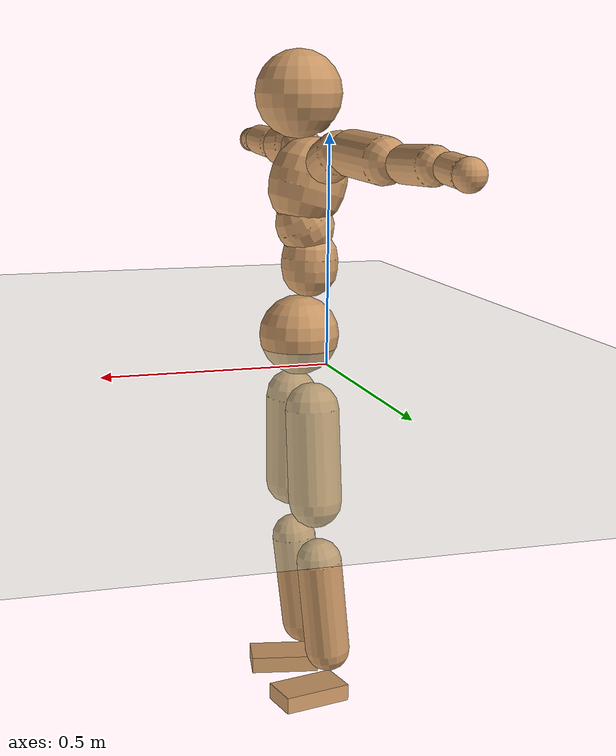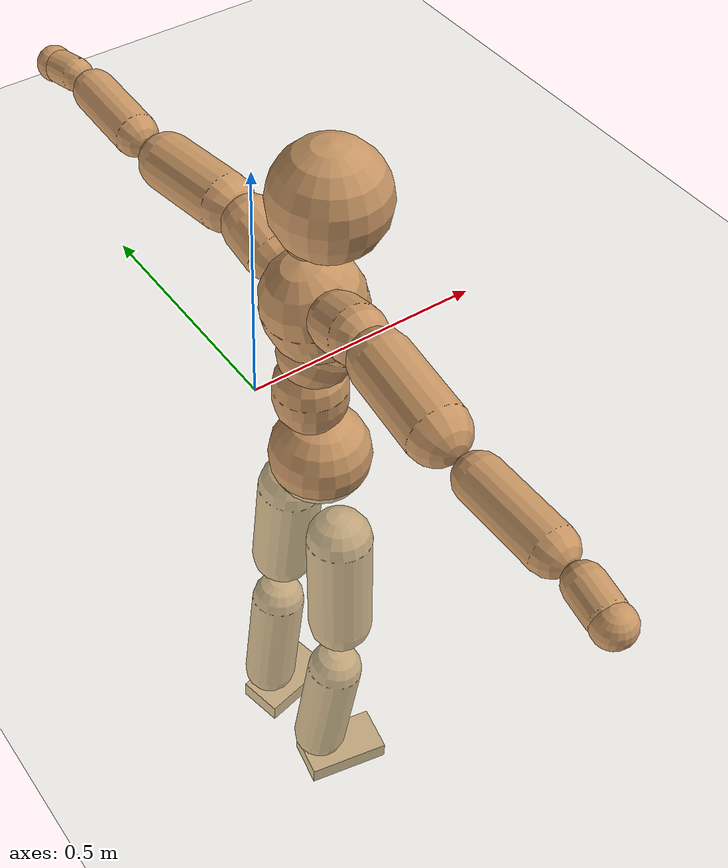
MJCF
<mujoco model="humanoid">
  <compiler coordinate="local"/>
  <default>
    <joint damping="0.0" armature="0.01" stiffness="0.0" limited="true"/>
    <geom conaffinity="1" condim="3" contype="7" margin="0.001" rgba="0.8 0.6 .4 1"/>
  </default>
  <asset>
    <texture type="skybox" builtin="gradient" rgb1=".4 .5 .6" rgb2="0 0 0" width="100" height="100"/>
    <texture builtin="flat" height="1278" mark="cross" markrgb="1 1 1" name="texgeom" random="0.01" rgb1="0.8 0.6 0.4" rgb2="0.8 0.6 0.4" type="cube" width="127"/>
    <texture builtin="checker" height="100" name="texplane" rgb1="0 0 0" rgb2="0.8 0.8 0.8" type="2d" width="100"/>
    <material name="MatPlane" reflectance="0.5" shininess="1" specular="1" texrepeat="60 60" texture="texplane"/>
    <material name="geom" texture="texgeom" texuniform="true"/>
  </asset>
  <worldbody>
    <light cutoff="100" diffuse="1 1 1" dir="-0 0 -1.3" directional="true" exponent="1" pos="0 0 1.3" specular=".1 .1 .1"/>
    <geom conaffinity="1" condim="3" name="floor" pos="0 0 0" rgba="0.8 0.9 0.8 1" size="100 100 .2" type="plane" material="MatPlane"/>
    <body name="Pelvis" pos="-0.0009 -0.2131 0.0283">
      <freejoint name="Pelvis"/>
      <geom type="sphere" contype="1" conaffinity="1" density="500" size="0.0935" pos="0.0000 0.0000 0.0000" name="Pelvis"/>
      <body name="L_Hip" pos="-0.0079 0.0722 -0.0897">
        <joint name="L_Hip_x" type="hinge" pos="0 0 0" axis="1 0 0" stiffness="800" damping="80" armature="0.02" range="-180.0000 180.0000"/>
        <joint name="L_Hip_y" type="hinge" pos="0 0 0" axis="0 1 0" stiffness="800" damping="80" armature="0.02" range="-180.0000 180.0000"/>
        <joint name="L_Hip_z" type="hinge" pos="0 0 0" axis="0 0 1" stiffness="800" damping="80" armature="0.02" range="-180.0000 180.0000"/>
        <geom type="capsule" contype="1" conaffinity="1" density="500" fromto="-0.0013 0.0061 -0.0728 -0.0051 0.0244 -0.2910" size="0.0625" name="L_Hip"/>
        <body name="L_Knee" pos="-0.0064 0.0305 -0.3638">
          <joint name="L_Knee_x" type="hinge" pos="0 0 0" axis="1 0 0" stiffness="800" damping="80" armature="0.02" range="-180.0000 180.0000"/>
          <joint name="L_Knee_y" type="hinge" pos="0 0 0" axis="0 1 0" stiffness="800" damping="80" armature="0.02" range="-180.0000 180.0000"/>
          <joint name="L_Knee_z" type="hinge" pos="0 0 0" axis="0 0 1" stiffness="800" damping="80" armature="0.02" range="-180.0000 180.0000"/>
          <geom type="capsule" contype="1" conaffinity="1" density="500" fromto="-0.0088 -0.0023 -0.0764 -0.0350 -0.0091 -0.3055" size="0.0537" name="L_Knee"/>
          <body name="L_Ankle" pos="-0.0438 -0.0113 -0.3819">
            <joint name="L_Ankle_x" type="hinge" pos="0 0 0" axis="1 0 0" stiffness="800" damping="80" armature="0.02" range="-180.0000 180.0000"/>
            <joint name="L_Ankle_y" type="hinge" pos="0 0 0" axis="0 1 0" stiffness="800" damping="80" armature="0.02" range="-180.0000 180.0000"/>
            <joint name="L_Ankle_z" type="hinge" pos="0 0 0" axis="0 0 1" stiffness="800" damping="80" armature="0.02" range="-180.0000 180.0000"/>
            <geom type="box" contype="1" conaffinity="1" density="500" pos="0.0574 0.0118 -0.0273" size="0.0827 0.0461 0.02" quat="0.9948 0.0000 0.0000 0.1016" name="L_Ankle"/>
            <body name="L_Toe" pos="0.1148 0.0237 -0.0546">
              <joint name="L_Toe_x" type="hinge" pos="0 0 0" axis="1 0 0" stiffness="500" damping="50" armature="0.02" range="-180.0000 180.0000"/>
              <joint name="L_Toe_y" type="hinge" pos="0 0 0" axis="0 1 0" stiffness="500" damping="50" armature="0.02" range="-180.0000 180.0000"/>
              <joint name="L_Toe_z" type="hinge" pos="0 0 0" axis="0 0 1" stiffness="500" damping="50" armature="0.02" range="-180.0000 180.0000"/>
              <geom type="box" contype="1" conaffinity="1" density="500" pos="0.0000 0.0000 0.0269" size="0.001 0.0023 0.001" quat="0.9941 0.0000 0.0000 0.1080" name="L_Toe"/>
            </body>
          </body>
        </body>
      </body>
      <body name="R_Hip" pos="-0.0049 -0.0698 -0.089">
        <joint name="R_Hip_x" type="hinge" pos="0 0 0" axis="1 0 0" stiffness="800" damping="80" armature="0.02" range="-180.0000 180.0000"/>
        <joint name="R_Hip_y" type="hinge" pos="0 0 0" axis="0 1 0" stiffness="800" damping="80" armature="0.02" range="-180.0000 180.0000"/>
        <joint name="R_Hip_z" type="hinge" pos="0 0 0" axis="0 0 1" stiffness="800" damping="80" armature="0.02" range="-180.0000 180.0000"/>
        <geom type="capsule" contype="1" conaffinity="1" density="500" fromto="-0.0018 -0.0072 -0.0740 -0.0073 -0.0287 -0.2962" size="0.0617" name="R_Hip"/>
        <body name="R_Knee" pos="-0.0091 -0.0359 -0.3702">
          <joint name="R_Knee_x" type="hinge" pos="0 0 0" axis="1 0 0" stiffness="800" damping="80" armature="0.02" range="-180.0000 180.0000"/>
          <joint name="R_Knee_y" type="hinge" pos="0 0 0" axis="0 1 0" stiffness="800" damping="80" armature="0.02" range="-180.0000 180.0000"/>
          <joint name="R_Knee_z" type="hinge" pos="0 0 0" axis="0 0 1" stiffness="800" damping="80" armature="0.02" range="-180.0000 180.0000"/>
          <geom type="capsule" contype="1" conaffinity="1" density="500" fromto="-0.0085 0.0027 -0.0764 -0.0339 0.0110 -0.3055" size="0.0539" name="R_Knee"/>
          <body name="R_Ankle" pos="-0.0423 0.0137 -0.3819">
            <joint name="R_Ankle_x" type="hinge" pos="0 0 0" axis="1 0 0" stiffness="800" damping="80" armature="0.02" range="-180.0000 180.0000"/>
            <joint name="R_Ankle_y" type="hinge" pos="0 0 0" axis="0 1 0" stiffness="800" damping="80" armature="0.02" range="-180.0000 180.0000"/>
            <joint name="R_Ankle_z" type="hinge" pos="0 0 0" axis="0 0 1" stiffness="800" damping="80" armature="0.02" range="-180.0000 180.0000"/>
            <geom type="box" contype="1" conaffinity="1" density="500" pos="0.0592 -0.0113 -0.0231" size="0.0833 0.0464 0.0198" quat="0.9956 0.0000 0.0000 -0.0942" name="R_Ankle"/>
            <body name="R_Toe" pos="0.1183 -0.0226 -0.0461">
              <joint name="R_Toe_x" type="hinge" pos="0 0 0" axis="1 0 0" stiffness="500" damping="50" armature="0.02" range="-180.0000 180.0000"/>
              <joint name="R_Toe_y" type="hinge" pos="0 0 0" axis="0 1 0" stiffness="500" damping="50" armature="0.02" range="-180.0000 180.0000"/>
              <joint name="R_Toe_z" type="hinge" pos="0 0 0" axis="0 0 1" stiffness="500" damping="50" armature="0.02" range="-180.0000 180.0000"/>
              <geom type="box" contype="1" conaffinity="1" density="500" pos="0.0000 0.0000 0.0253" size="0.0009 0.0023 0.0011" quat="0.9964 0.0000 0.0000 -0.0846" name="R_Toe"/>
            </body>
          </body>
        </body>
      </body>
      <body name="Torso" pos="-0.023 -0.0029 0.1035">
        <joint name="Torso_x" type="hinge" pos="0 0 0" axis="1 0 0" stiffness="1000" damping="100" armature="0.02" range="-180.0000 180.0000"/>
        <joint name="Torso_y" type="hinge" pos="0 0 0" axis="0 1 0" stiffness="1000" damping="100" armature="0.02" range="-180.0000 180.0000"/>
        <joint name="Torso_z" type="hinge" pos="0 0 0" axis="0 0 1" stiffness="1000" damping="100" armature="0.02" range="-180.0000 180.0000"/>
        <geom type="capsule" contype="1" conaffinity="1" density="500" fromto="-0.0016 0.0023 0.0776 -0.0011 0.0015 0.0517" size="0.066216" name="Torso"/>
        <body name="Spine" pos="-0.0026 0.0039 0.1293">
          <joint name="Spine_x" type="hinge" pos="0 0 0" axis="1 0 0" stiffness="1000" damping="100" armature="0.02" range="-180.0000 180.0000"/>
          <joint name="Spine_y" type="hinge" pos="0 0 0" axis="0 1 0" stiffness="1000" damping="100" armature="0.02" range="-180.0000 180.0000"/>
          <joint name="Spine_z" type="hinge" pos="0 0 0" axis="0 0 1" stiffness="1000" damping="100" armature="0.02" range="-180.0000 180.0000"/>
          <geom type="capsule" contype="1" conaffinity="1" density="500" fromto="0.0170 0.0013 0.0297 0.0114 0.0008 0.0198" size="0.066495" name="Spine"/>
          <body name="Chest" pos="0.0284 0.0021 0.0494">
            <joint name="Chest_x" type="hinge" pos="0 0 0" axis="1 0 0" stiffness="1000" damping="100" armature="0.02" range="-180.0000 180.0000"/>
            <joint name="Chest_y" type="hinge" pos="0 0 0" axis="0 1 0" stiffness="1000" damping="100" armature="0.02" range="-180.0000 180.0000"/>
            <joint name="Chest_z" type="hinge" pos="0 0 0" axis="0 0 1" stiffness="1000" damping="100" armature="0.02" range="-180.0000 180.0000"/>
            <geom type="capsule" contype="1" conaffinity="1" density="500" fromto="-0.0249 -0.0006 0.0880 -0.0166 -0.0004 0.0587" size="0.088629" name="Chest"/>
            <body name="Neck" pos="-0.0473 -0.0015 0.2074">
              <joint name="Neck_x" type="hinge" pos="0 0 0" axis="1 0 0" stiffness="500" damping="50" armature="0.02" range="-180.0000 180.0000"/>
              <joint name="Neck_y" type="hinge" pos="0 0 0" axis="0 1 0" stiffness="500" damping="50" armature="0.02" range="-180.0000 180.0000"/>
              <joint name="Neck_z" type="hinge" pos="0 0 0" axis="0 0 1" stiffness="500" damping="50" armature="0.02" range="-180.0000 180.0000"/>
              <geom type="capsule" contype="1" conaffinity="1" density="500" fromto="0.0102 0.0006 0.0125 0.0409 0.0025 0.0502" size="0.038502" name="Neck"/>
              <body name="Head" pos="0.0512 0.0032 0.0627">
                <joint name="Head_x" type="hinge" pos="0 0 0" axis="1 0 0" stiffness="500" damping="50" armature="0.02" range="-180.0000 180.0000"/>
                <joint name="Head_y" type="hinge" pos="0 0 0" axis="0 1 0" stiffness="500" damping="50" armature="0.02" range="-180.0000 180.0000"/>
                <joint name="Head_z" type="hinge" pos="0 0 0" axis="0 0 1" stiffness="500" damping="50" armature="0.02" range="-180.0000 180.0000"/>
                <geom type="sphere" contype="1" conaffinity="1" density="500" size="0.0994" pos="0.0000 0.0000 0.0000" name="Head"/>
              </body>
            </body>
            <body name="L_Thorax" pos="-0.0359 0.077 0.1176">
              <joint name="L_Thorax_x" type="hinge" pos="0 0 0" axis="1 0 0" stiffness="500" damping="50" armature="0.02" range="-180.0000 180.0000"/>
              <joint name="L_Thorax_y" type="hinge" pos="0 0 0" axis="0 1 0" stiffness="500" damping="50" armature="0.02" range="-180.0000 180.0000"/>
              <joint name="L_Thorax_z" type="hinge" pos="0 0 0" axis="0 0 1" stiffness="500" damping="50" armature="0.02" range="-180.0000 180.0000"/>
              <geom type="capsule" contype="1" conaffinity="1" density="500" fromto="-0.0016 0.0175 0.0066 -0.0064 0.0699 0.0263" size="0.0504" name="L_Thorax"/>
              <body name="L_Shoulder" pos="-0.0079 0.0873 0.0329">
                <joint name="L_Shoulder_x" type="hinge" pos="0 0 0" axis="1 0 0" stiffness="500" damping="50" armature="0.02" range="-720.0000 720.0000"/>
                <joint name="L_Shoulder_y" type="hinge" pos="0 0 0" axis="0 1 0" stiffness="500" damping="50" armature="0.02" range="-720.0000 720.0000"/>
                <joint name="L_Shoulder_z" type="hinge" pos="0 0 0" axis="0 0 1" stiffness="500" damping="50" armature="0.02" range="-720.0000 720.0000"/>
                <geom type="capsule" contype="1" conaffinity="1" density="500" fromto="-0.0058 0.0506 -0.0026 -0.0231 0.2022 -0.0105" size="0.0508" name="L_Shoulder"/>
                <body name="L_Elbow" pos="-0.0289 0.2528 -0.0131">
                  <joint name="L_Elbow_x" type="hinge" pos="0 0 0" axis="1 0 0" stiffness="500" damping="50" armature="0.02" range="-720.0000 720.0000"/>
                  <joint name="L_Elbow_y" type="hinge" pos="0 0 0" axis="0 1 0" stiffness="500" damping="50" armature="0.02" range="-720.0000 720.0000"/>
                  <joint name="L_Elbow_z" type="hinge" pos="0 0 0" axis="0 0 1" stiffness="500" damping="50" armature="0.02" range="-720.0000 720.0000"/>
                  <geom type="capsule" contype="1" conaffinity="1" density="500" fromto="0.0001 0.0480 0.0018 0.0004 0.1922 0.0074" size="0.0393" name="L_Elbow"/>
                  <body name="L_Wrist" pos="0.0005 0.2402 0.0092">
                    <joint name="L_Wrist_x" type="hinge" pos="0 0 0" axis="1 0 0" stiffness="300" damping="30" armature="0.02" range="-180.0000 180.0000"/>
                    <joint name="L_Wrist_y" type="hinge" pos="0 0 0" axis="0 1 0" stiffness="300" damping="30" armature="0.02" range="-180.0000 180.0000"/>
                    <joint name="L_Wrist_z" type="hinge" pos="0 0 0" axis="0 0 1" stiffness="300" damping="30" armature="0.02" range="-180.0000 180.0000"/>
                    <geom type="capsule" contype="1" conaffinity="1" density="500" fromto="-0.0027 0.0161 -0.0020 -0.0107 0.0646 -0.0079" size="0.0305" name="L_Wrist"/>
                    <body name="L_Hand" pos="-0.0133 0.0807 -0.0098">
                      <joint name="L_Hand_x" type="hinge" pos="0 0 0" axis="1 0 0" stiffness="300" damping="30" armature="0.02" range="-180.0000 180.0000"/>
                      <joint name="L_Hand_y" type="hinge" pos="0 0 0" axis="0 1 0" stiffness="300" damping="30" armature="0.02" range="-180.0000 180.0000"/>
                      <joint name="L_Hand_z" type="hinge" pos="0 0 0" axis="0 0 1" stiffness="300" damping="30" armature="0.02" range="-180.0000 180.0000"/>
                      <geom type="sphere" contype="1" conaffinity="1" density="500" size="0.0326" pos="0.0000 0.0000 0.0000" name="L_Hand"/>
                    </body>
                  </body>
                </body>
              </body>
            </body>
            <body name="R_Thorax" pos="-0.0413 -0.0785 0.115">
              <joint name="R_Thorax_x" type="hinge" pos="0 0 0" axis="1 0 0" stiffness="500" damping="50" armature="0.02" range="-180.0000 180.0000"/>
              <joint name="R_Thorax_y" type="hinge" pos="0 0 0" axis="0 1 0" stiffness="500" damping="50" armature="0.02" range="-180.0000 180.0000"/>
              <joint name="R_Thorax_z" type="hinge" pos="0 0 0" axis="0 0 1" stiffness="500" damping="50" armature="0.02" range="-180.0000 180.0000"/>
              <geom type="capsule" contype="1" conaffinity="1" density="500" fromto="-0.0022 -0.0183 0.0067 -0.0087 -0.0734 0.0267" size="0.0494" name="R_Thorax"/>
              <body name="R_Shoulder" pos="-0.0109 -0.0917 0.0334">
                <joint name="R_Shoulder_x" type="hinge" pos="0 0 0" axis="1 0 0" stiffness="500" damping="50" armature="0.02" range="-720.0000 720.0000"/>
                <joint name="R_Shoulder_y" type="hinge" pos="0 0 0" axis="0 1 0" stiffness="500" damping="50" armature="0.02" range="-720.0000 720.0000"/>
                <joint name="R_Shoulder_z" type="hinge" pos="0 0 0" axis="0 0 1" stiffness="500" damping="50" armature="0.02" range="-720.0000 720.0000"/>
                <geom type="capsule" contype="1" conaffinity="1" density="500" fromto="-0.0043 -0.0496 -0.0027 -0.0170 -0.1984 -0.0107" size="0.0521" name="R_Shoulder"/>
                <body name="R_Elbow" pos="-0.0213 -0.248 -0.0134">
                  <joint name="R_Elbow_x" type="hinge" pos="0 0 0" axis="1 0 0" stiffness="500" damping="50" armature="0.02" range="-720.0000 720.0000"/>
                  <joint name="R_Elbow_y" type="hinge" pos="0 0 0" axis="0 1 0" stiffness="500" damping="50" armature="0.02" range="-720.0000 720.0000"/>
                  <joint name="R_Elbow_z" type="hinge" pos="0 0 0" axis="0 0 1" stiffness="500" damping="50" armature="0.02" range="-720.0000 720.0000"/>
                  <geom type="capsule" contype="1" conaffinity="1" density="500" fromto="-0.0006 -0.0494 0.0017 -0.0023 -0.1975 0.0069" size="0.0394" name="R_Elbow"/>
                  <body name="R_Wrist" pos="-0.0029 -0.2469 0.0086">
                    <joint name="R_Wrist_x" type="hinge" pos="0 0 0" axis="1 0 0" stiffness="300" damping="30" armature="0.02" range="-180.0000 180.0000"/>
                    <joint name="R_Wrist_y" type="hinge" pos="0 0 0" axis="0 1 0" stiffness="300" damping="30" armature="0.02" range="-180.0000 180.0000"/>
                    <joint name="R_Wrist_z" type="hinge" pos="0 0 0" axis="0 0 1" stiffness="300" damping="30" armature="0.02" range="-180.0000 180.0000"/>
                    <geom type="capsule" contype="1" conaffinity="1" density="500" fromto="-0.0021 -0.0163 -0.0015 -0.0084 -0.0651 -0.0059" size="0.0312" name="R_Wrist"/>
                    <body name="R_Hand" pos="-0.0105 -0.0813 -0.0073">
                      <joint name="R_Hand_x" type="hinge" pos="0 0 0" axis="1 0 0" stiffness="300" damping="30" armature="0.02" range="-180.0000 180.0000"/>
                      <joint name="R_Hand_y" type="hinge" pos="0 0 0" axis="0 1 0" stiffness="300" damping="30" armature="0.02" range="-180.0000 180.0000"/>
                      <joint name="R_Hand_z" type="hinge" pos="0 0 0" axis="0 0 1" stiffness="300" damping="30" armature="0.02" range="-180.0000 180.0000"/>
                      <geom type="sphere" contype="1" conaffinity="1" density="500" size="0.0327" pos="0.0000 0.0000 0.0000" name="R_Hand"/>
                    </body>
                  </body>
                </body>
              </body>
            </body>
          </body>
        </body>
      </body>
    </body>
  </worldbody>
  <actuator>
    <motor name="L_Hip_x" joint="L_Hip_x" gear="500"/>
    <motor name="L_Hip_y" joint="L_Hip_y" gear="500"/>
    <motor name="L_Hip_z" joint="L_Hip_z" gear="500"/>
    <motor name="L_Knee_x" joint="L_Knee_x" gear="500"/>
    <motor name="L_Knee_y" joint="L_Knee_y" gear="500"/>
    <motor name="L_Knee_z" joint="L_Knee_z" gear="500"/>
    <motor name="L_Ankle_x" joint="L_Ankle_x" gear="500"/>
    <motor name="L_Ankle_y" joint="L_Ankle_y" gear="500"/>
    <motor name="L_Ankle_z" joint="L_Ankle_z" gear="500"/>
    <motor name="L_Toe_x" joint="L_Toe_x" gear="500"/>
    <motor name="L_Toe_y" joint="L_Toe_y" gear="500"/>
    <motor name="L_Toe_z" joint="L_Toe_z" gear="500"/>
    <motor name="R_Hip_x" joint="R_Hip_x" gear="500"/>
    <motor name="R_Hip_y" joint="R_Hip_y" gear="500"/>
    <motor name="R_Hip_z" joint="R_Hip_z" gear="500"/>
    <motor name="R_Knee_x" joint="R_Knee_x" gear="500"/>
    <motor name="R_Knee_y" joint="R_Knee_y" gear="500"/>
    <motor name="R_Knee_z" joint="R_Knee_z" gear="500"/>
    <motor name="R_Ankle_x" joint="R_Ankle_x" gear="500"/>
    <motor name="R_Ankle_y" joint="R_Ankle_y" gear="500"/>
    <motor name="R_Ankle_z" joint="R_Ankle_z" gear="500"/>
    <motor name="R_Toe_x" joint="R_Toe_x" gear="500"/>
    <motor name="R_Toe_y" joint="R_Toe_y" gear="500"/>
    <motor name="R_Toe_z" joint="R_Toe_z" gear="500"/>
    <motor name="Torso_x" joint="Torso_x" gear="500"/>
    <motor name="Torso_y" joint="Torso_y" gear="500"/>
    <motor name="Torso_z" joint="Torso_z" gear="500"/>
    <motor name="Spine_x" joint="Spine_x" gear="500"/>
    <motor name="Spine_y" joint="Spine_y" gear="500"/>
    <motor name="Spine_z" joint="Spine_z" gear="500"/>
    <motor name="Chest_x" joint="Chest_x" gear="500"/>
    <motor name="Chest_y" joint="Chest_y" gear="500"/>
    <motor name="Chest_z" joint="Chest_z" gear="500"/>
    <motor name="Neck_x" joint="Neck_x" gear="500"/>
    <motor name="Neck_y" joint="Neck_y" gear="500"/>
    <motor name="Neck_z" joint="Neck_z" gear="500"/>
    <motor name="Head_x" joint="Head_x" gear="500"/>
    <motor name="Head_y" joint="Head_y" gear="500"/>
    <motor name="Head_z" joint="Head_z" gear="500"/>
    <motor name="L_Thorax_x" joint="L_Thorax_x" gear="500"/>
    <motor name="L_Thorax_y" joint="L_Thorax_y" gear="500"/>
    <motor name="L_Thorax_z" joint="L_Thorax_z" gear="500"/>
    <motor name="L_Shoulder_x" joint="L_Shoulder_x" gear="500"/>
    <motor name="L_Shoulder_y" joint="L_Shoulder_y" gear="500"/>
    <motor name="L_Shoulder_z" joint="L_Shoulder_z" gear="500"/>
    <motor name="L_Elbow_x" joint="L_Elbow_x" gear="500"/>
    <motor name="L_Elbow_y" joint="L_Elbow_y" gear="500"/>
    <motor name="L_Elbow_z" joint="L_Elbow_z" gear="500"/>
    <motor name="L_Wrist_x" joint="L_Wrist_x" gear="500"/>
    <motor name="L_Wrist_y" joint="L_Wrist_y" gear="500"/>
    <motor name="L_Wrist_z" joint="L_Wrist_z" gear="500"/>
    <motor name="L_Hand_x" joint="L_Hand_x" gear="500"/>
    <motor name="L_Hand_y" joint="L_Hand_y" gear="500"/>
    <motor name="L_Hand_z" joint="L_Hand_z" gear="500"/>
    <motor name="R_Thorax_x" joint="R_Thorax_x" gear="500"/>
    <motor name="R_Thorax_y" joint="R_Thorax_y" gear="500"/>
    <motor name="R_Thorax_z" joint="R_Thorax_z" gear="500"/>
    <motor name="R_Shoulder_x" joint="R_Shoulder_x" gear="500"/>
    <motor name="R_Shoulder_y" joint="R_Shoulder_y" gear="500"/>
    <motor name="R_Shoulder_z" joint="R_Shoulder_z" gear="500"/>
    <motor name="R_Elbow_x" joint="R_Elbow_x" gear="500"/>
    <motor name="R_Elbow_y" joint="R_Elbow_y" gear="500"/>
    <motor name="R_Elbow_z" joint="R_Elbow_z" gear="500"/>
    <motor name="R_Wrist_x" joint="R_Wrist_x" gear="500"/>
    <motor name="R_Wrist_y" joint="R_Wrist_y" gear="500"/>
    <motor name="R_Wrist_z" joint="R_Wrist_z" gear="500"/>
    <motor name="R_Hand_x" joint="R_Hand_x" gear="500"/>
    <motor name="R_Hand_y" joint="R_Hand_y" gear="500"/>
    <motor name="R_Hand_z" joint="R_Hand_z" gear="500"/>
  </actuator>
  <contact>
    <exclude body1="Torso" body2="Chest"/>
    <exclude body1="Head" body2="Chest"/>
    <exclude body1="R_Knee" body2="R_Toe"/>
    <exclude body1="R_Knee" body2="L_Ankle"/>
    <exclude body1="R_Knee" body2="L_Toe"/>
    <exclude body1="L_Knee" body2="L_Toe"/>
    <exclude body1="L_Knee" body2="R_Ankle"/>
    <exclude body1="L_Knee" body2="R_Toe"/>
    <exclude body1="L_Shoulder" body2="Chest"/>
    <exclude body1="R_Shoulder" body2="Chest"/>
  </contact>
  <sensor/>
  <size njmax="700" nconmax="700"/>
</mujoco>
